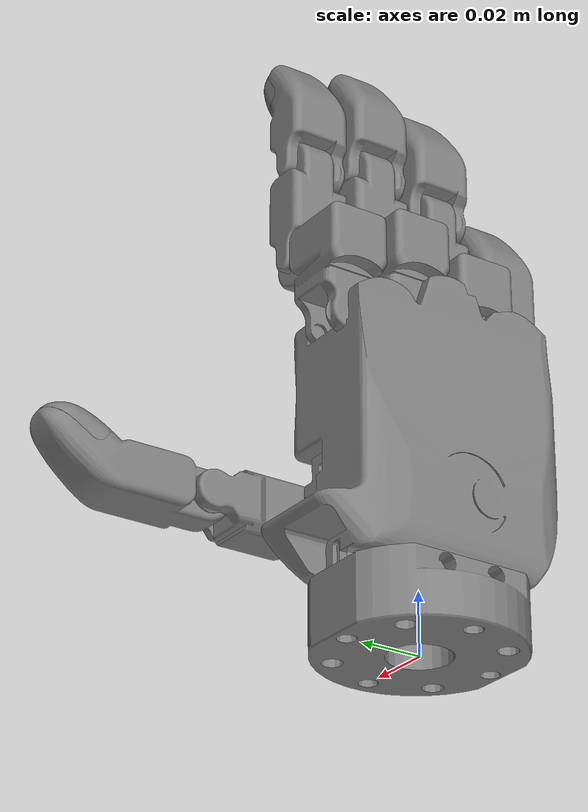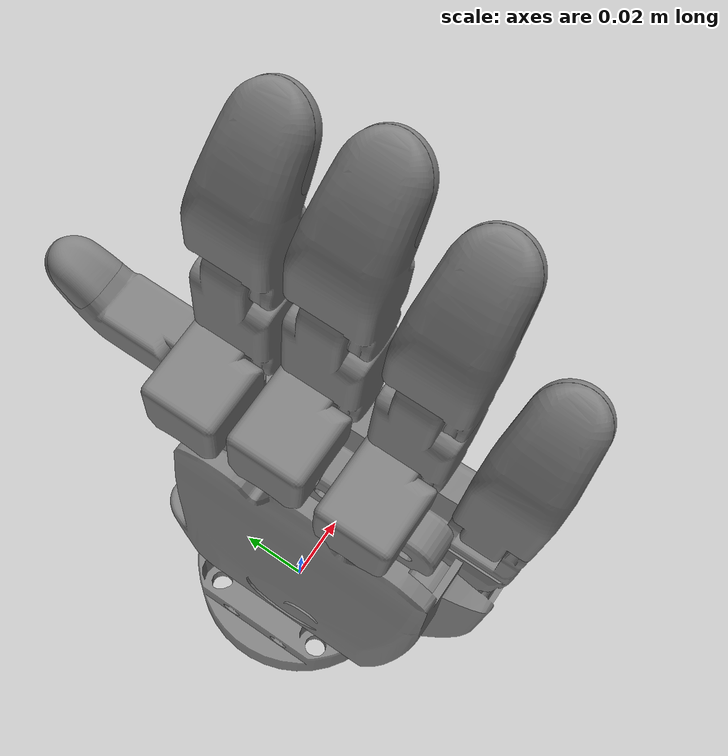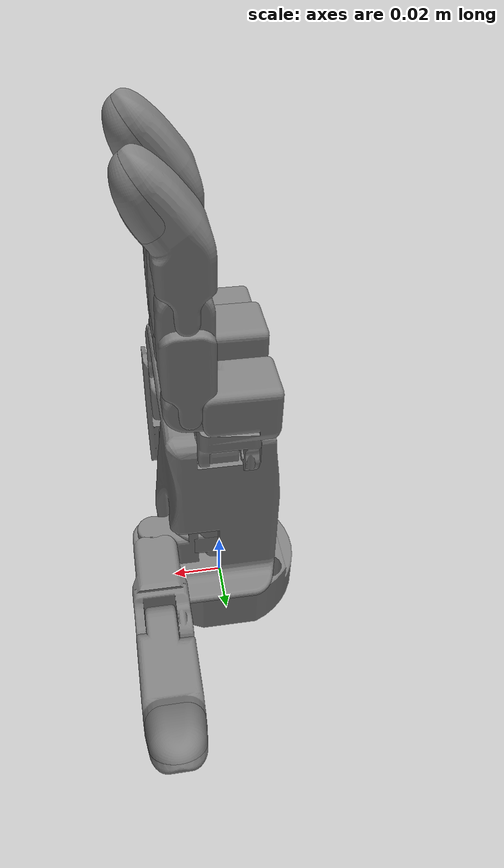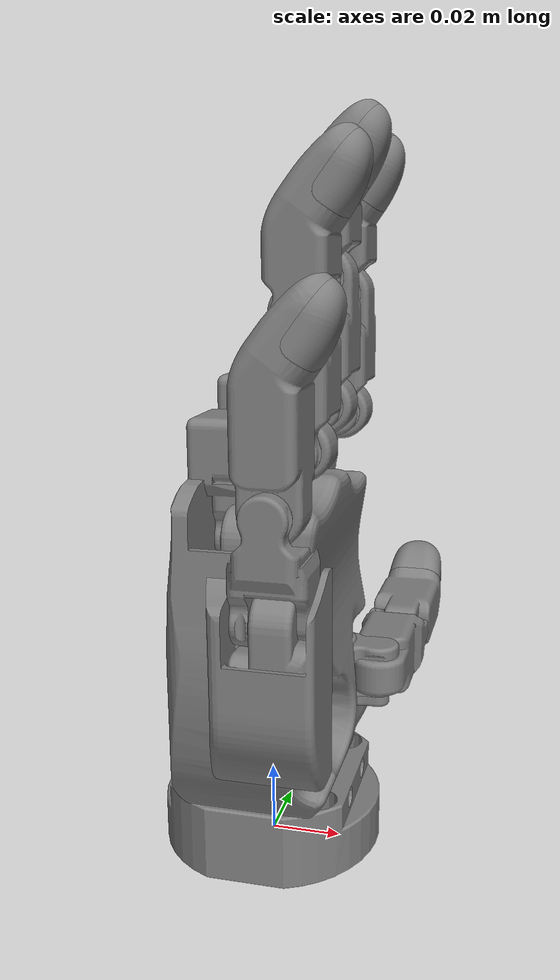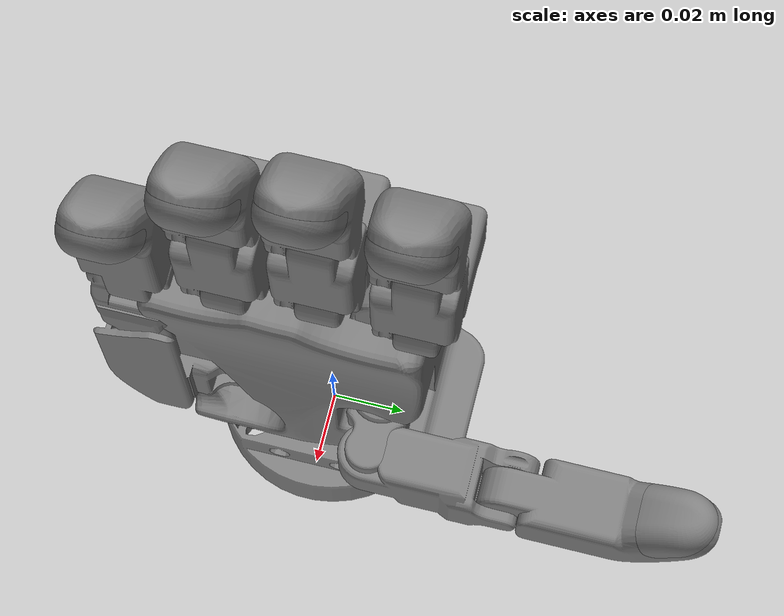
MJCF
<!--
    dg5fs_15dof_right_w_mount.xml
    Licensed under the BSD-3-Clause
    Copyright (c) 2026 Tesollo Inc.
    See LICENSE file for details.

    Reference:
    * https://tesollo.com/dg-5f/
-->
<mujoco model="dg5fs_right">
  <compiler angle="radian" meshdir="meshes"/>

  <asset>
    <mesh name="link_mount" content_type="model/stl" file="dg5fs_15dof_right/link_mount.STL"/>
    <mesh name="link_base" content_type="model/stl" file="dg5fs_15dof_right/link_base.STL"/>
    <mesh name="link_1_1" content_type="model/stl" file="dg5fs_15dof_right/link_1_1.STL"/>
    <mesh name="link_1_2" content_type="model/stl" file="dg5fs_15dof_right/link_1_2.STL"/>
    <mesh name="link_1_3" content_type="model/stl" file="dg5fs_15dof_right/link_1_3.STL"/>
    <mesh name="link_1_tip" content_type="model/stl" file="dg5fs_15dof_right/link_1_tip.STL"/>
    <mesh name="link_2_1" content_type="model/stl" file="dg5fs_15dof_right/link_2_1.STL"/>
    <mesh name="link_2_2" content_type="model/stl" file="dg5fs_15dof_right/link_2_2.STL"/>
    <mesh name="link_2_3" content_type="model/stl" file="dg5fs_15dof_right/link_2_3.STL"/>
    <mesh name="link_2_tip" content_type="model/stl" file="dg5fs_15dof_right/link_2_tip.STL"/>
    <mesh name="link_3_1" content_type="model/stl" file="dg5fs_15dof_right/link_3_1.STL"/>
    <mesh name="link_3_2" content_type="model/stl" file="dg5fs_15dof_right/link_3_2.STL"/>
    <mesh name="link_3_3" content_type="model/stl" file="dg5fs_15dof_right/link_3_3.STL"/>
    <mesh name="link_3_tip" content_type="model/stl" file="dg5fs_15dof_right/link_3_tip.STL"/>
    <mesh name="link_4_1" content_type="model/stl" file="dg5fs_15dof_right/link_4_1.STL"/>
    <mesh name="link_4_2" content_type="model/stl" file="dg5fs_15dof_right/link_4_2.STL"/>
    <mesh name="link_4_3" content_type="model/stl" file="dg5fs_15dof_right/link_4_3.STL"/>
    <mesh name="link_4_tip" content_type="model/stl" file="dg5fs_15dof_right/link_4_tip.STL"/>
    <mesh name="link_5_1" content_type="model/stl" file="dg5fs_15dof_right/link_5_1.STL"/>
    <mesh name="link_5_2" content_type="model/stl" file="dg5fs_15dof_right/link_5_2.STL"/>
    <mesh name="link_5_3" content_type="model/stl" file="dg5fs_15dof_right/link_5_3.STL"/>
    <mesh name="link_5_tip" content_type="model/stl" file="dg5fs_15dof_right/link_5_tip.STL"/>
  </asset>

  <worldbody>
    <geom type="mesh" mesh="link_mount"/>
    <geom pos="0 0 0.015" type="mesh" mesh="link_base"/>
    <body name="link_1_1" pos="0.0017 0.018 0.0448" quat="0.499998 0.5 0.500002 0.5">
      <inertial pos="2.03296e-09 -0.00601222 0.00795349" quat="0.979032 -0.203705 0 0" mass="0.0198064" diaginertia="3.17093e-06 2.68441e-06 1.18745e-06"/>
      <joint name="joint_1_1" pos="0 0 0" axis="0 0 1" range="-1.5708 1.5708" actuatorfrcrange="-7.5 7.5"/>
      <geom type="mesh" mesh="link_1_1"/>
      <body name="link_1_2" pos="0 0 0.0262" quat="0.707105 -0.707108 0 0">
        <inertial pos="0.01642 0.00029404 0.00032561" quat="-0.0500784 0.721924 -0.00782402 0.690113" mass="0.0281" diaginertia="4.28119e-06 4.22279e-06 1.40322e-06"/>
        <joint name="joint_1_2" pos="0 0 0" axis="0 0 1" range="-2.67035 0" actuatorfrcrange="-7.5 7.5"/>
        <geom type="mesh" mesh="link_1_2"/>
        <body name="link_1_3" pos="0.0381 0 0" quat="0.707105 0.707108 0 0">
          <inertial pos="0.0214622 0.00295137 0.000236025" quat="0.0346616 0.714998 -0.0263174 0.697771" mass="0.0387635" diaginertia="1.2196e-05 8.96873e-06 5.25421e-06"/>
          <joint name="joint_1_3" pos="0 0 0" axis="0 0 1" range="-1.5708 1.5708" actuatorfrcrange="-7.5 7.5"/>
          <geom type="mesh" mesh="link_1_3"/>
          <geom pos="0.03866 0.0034211 0" quat="0.951056 0 0 0.309018" type="mesh" mesh="link_1_tip"/>
        </body>
      </body>
    </body>
    <body name="link_2_1" pos="0.0017 0.028 0.09865" quat="-2.59734e-06 0.707105 2.59735e-06 0.707108">
      <inertial pos="0.0198782 0.000277092 0.000891767" quat="0.686188 -0.134177 -0.177008 0.692684" mass="0.0330237" diaginertia="4.58833e-06 3.29048e-06 2.90003e-06"/>
      <joint name="joint_2_1" pos="0 0 0" axis="0 0 1" range="-0.837758 0.261799" actuatorfrcrange="-7.5 7.5"/>
      <geom type="mesh" mesh="link_2_1"/>
      <body name="link_2_2" pos="0.02415 0 0.0126" quat="0.707105 -0.707108 0 0">
        <inertial pos="0.0195721 -6.37508e-09 -3.77861e-05" quat="0.463077 0.534377 0.534384 0.463071" mass="0.023482" diaginertia="3.13583e-06 2.92228e-06 1.11694e-06"/>
        <joint name="joint_2_2" pos="0 0 0" axis="0 0 -1" range="0 2.19911" actuatorfrcrange="-7.5 7.5"/>
        <geom type="mesh" mesh="link_2_2"/>
        <body name="link_2_3" pos="0.0334 0 0" quat="-3.67321e-06 1 0 0">
          <inertial pos="0.0186737 0.00163736 0.00032726" quat="0.29372 0.686122 -0.215003 0.629872" mass="0.0252466" diaginertia="5.33244e-06 4.4931e-06 2.36151e-06"/>
          <joint name="joint_2_3" pos="0 0 0" axis="0 0 1" range="-1.5708 1.5708" actuatorfrcrange="-7.5 7.5"/>
          <geom type="mesh" mesh="link_2_3"/>
          <geom pos="0.02776 0.0034211 0" quat="0.951056 0 0 0.309018" type="mesh" mesh="link_2_tip"/>
        </body>
      </body>
    </body>
    <body name="link_3_1" pos="0.0017 0.005 0.10365" quat="-2.59734e-06 0.707105 2.59735e-06 0.707108">
      <inertial pos="0.0198782 0.000277092 0.000891767" quat="0.686188 -0.134177 -0.177008 0.692684" mass="0.0330237" diaginertia="4.58833e-06 3.29048e-06 2.90003e-06"/>
      <joint name="joint_3_1" pos="0 0 0" axis="0 0 1" range="-0.575959 0.733038" actuatorfrcrange="-7.5 7.5"/>
      <geom type="mesh" mesh="link_3_1"/>
      <body name="link_3_2" pos="0.02415 0 0.0126" quat="0.707105 -0.707108 0 0">
        <inertial pos="0.0195721 -6.67109e-09 -3.77864e-05" quat="0.463077 0.534377 0.534384 0.463071" mass="0.023482" diaginertia="3.13583e-06 2.92228e-06 1.11694e-06"/>
        <joint name="joint_3_2" pos="0 0 0" axis="0 0 -1" range="0 2.26893" actuatorfrcrange="-7.5 7.5"/>
        <geom type="mesh" mesh="link_3_2"/>
        <body name="link_3_3" pos="0.0334 0 0" quat="-3.67321e-06 -1 0 0">
          <inertial pos="0.0186737 0.00363962 -0.000327257" quat="0.122338 0.667746 -0.15527 0.717663" mass="0.0252466" diaginertia="5.0602e-06 3.62682e-06 2.96652e-06"/>
          <joint name="joint_3_3" pos="0 0 0" axis="0 0 1" range="-1.5708 1.5708" actuatorfrcrange="-7.5 7.5"/>
          <geom type="mesh" mesh="link_3_3"/>
          <geom pos="0.02776 0.0034211 0" quat="0.951056 0 0 0.309018" type="mesh" mesh="link_3_tip"/>
        </body>
      </body>
    </body>
    <body name="link_4_1" pos="0.0013 -0.018 0.09565" quat="-2.59734e-06 0.707105 2.59735e-06 0.707108">
      <inertial pos="0.0198782 0.000277092 0.000891767" quat="0.686188 -0.134177 -0.177008 0.692684" mass="0.0330237" diaginertia="4.58833e-06 3.29048e-06 2.90003e-06"/>
      <joint name="joint_4_1" pos="0 0 0" axis="0 0 1" range="-0.20944 0.837758" actuatorfrcrange="-7.5 7.5"/>
      <geom type="mesh" mesh="link_4_1"/>
      <body name="link_4_2" pos="0.02415 0 0.0126" quat="0.707105 -0.707108 0 0">
        <inertial pos="0.0195721 -6.35657e-09 -3.7786e-05" quat="0.463077 0.534377 0.534384 0.463071" mass="0.023482" diaginertia="3.13583e-06 2.92228e-06 1.11694e-06"/>
        <joint name="joint_4_2" pos="0 0 0" axis="0 0 -1" range="0 2.21657" actuatorfrcrange="-7.5 7.5"/>
        <geom type="mesh" mesh="link_4_2"/>
        <body name="link_4_3" pos="0.0334 0 0" quat="-3.67321e-06 1 0 0">
          <inertial pos="0.0186737 0.00163737 0.000327258" quat="0.29372 0.686122 -0.215003 0.629872" mass="0.0252466" diaginertia="5.33244e-06 4.4931e-06 2.36151e-06"/>
          <joint name="joint_4_3" pos="0 0 0" axis="0 0 1" range="-1.5708 1.5708" actuatorfrcrange="-7.5 7.5"/>
          <geom type="mesh" mesh="link_4_3"/>
          <geom pos="0.02776 0.0034211 0" quat="0.951056 0 0 0.309018" type="mesh" mesh="link_4_tip"/>
        </body>
      </body>
    </body>
    <body name="link_5_1" pos="0.013 -0.01805 0.0514" quat="0.707105 0 0 -0.707108">
      <inertial pos="0.0214521 -0.00296674 0.010525" quat="0.992106 0.0411602 0.0755267 -0.0912588" mass="0.0714341" diaginertia="1.85677e-05 1.66879e-05 8.53733e-06"/>
      <joint name="joint_5_1" pos="0 0 0" axis="0 0 1" range="0 1.0472" actuatorfrcrange="-7.5 7.5"/>
      <geom type="mesh" mesh="link_5_1"/>
      <body name="link_5_2" pos="0.02445 0 0.0307" quat="0.707105 -0.707108 0 0">
        <inertial pos="0.000569864 -0.0136 -0.000569863" quat="0.688702 0.600309 -0.160268 0.373675" mass="0.0144988" diaginertia="1.30428e-06 1.26247e-06 8.11065e-07"/>
        <joint name="joint_5_2" pos="0 0 0" axis="0 0 1" range="-0.645772 1.5708" actuatorfrcrange="-7.5 7.5"/>
        <geom type="mesh" mesh="link_5_2"/>
        <body name="link_5_3" pos="0 -0.0272 0" quat="0.499998 0.5 -0.500002 -0.5">
          <inertial pos="0.0214623 0.00164733 -0.000236022" quat="0.121944 0.686332 -0.137349 0.703714" mass="0.038764" diaginertia="1.2429e-05 9.54324e-06 4.91166e-06"/>
          <joint name="joint_5_3" pos="0 0 0" axis="0 0 1" range="-1.5708 1.5708" actuatorfrcrange="-7.5 7.5"/>
          <geom type="mesh" mesh="link_5_3"/>
          <geom pos="0.03866 0.0034211 0" quat="0.951056 0 0 0.309018" type="mesh" mesh="link_5_tip"/>
        </body>
      </body>
    </body>
  </worldbody>
</mujoco>
